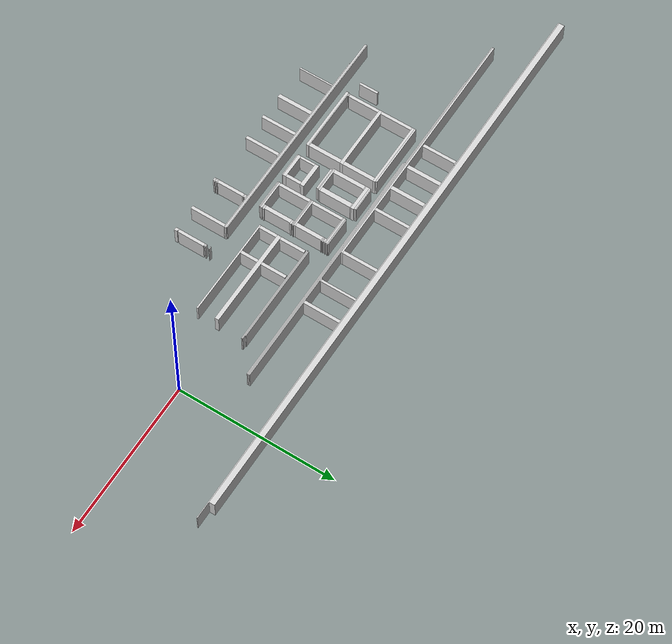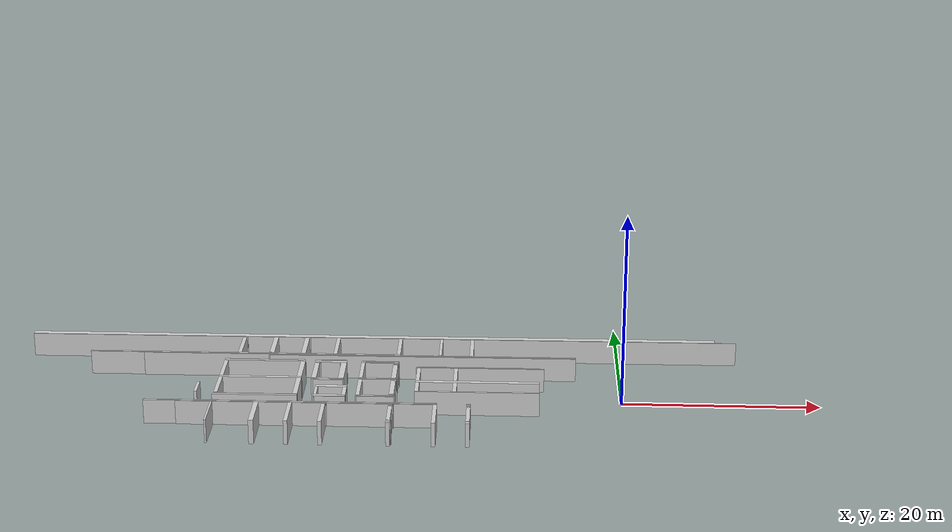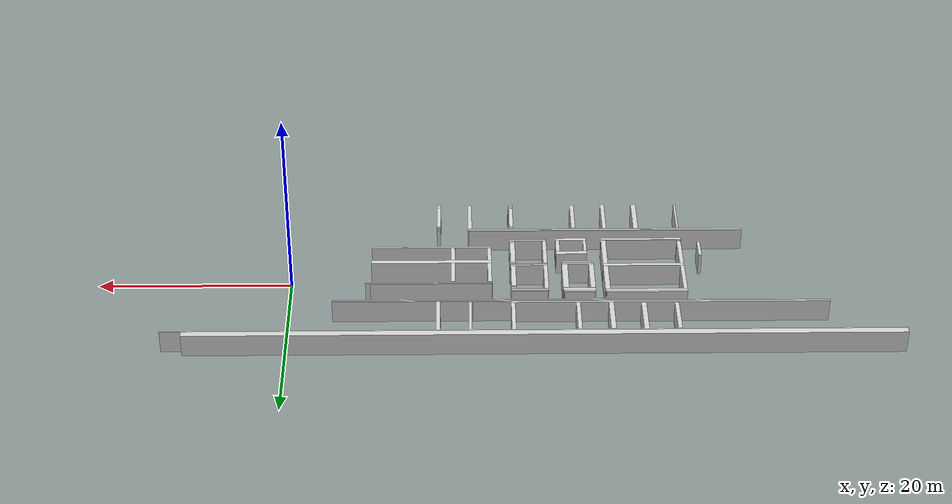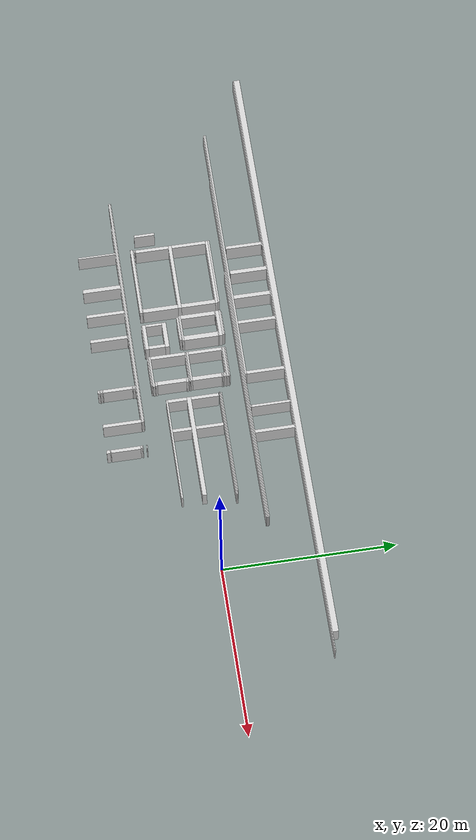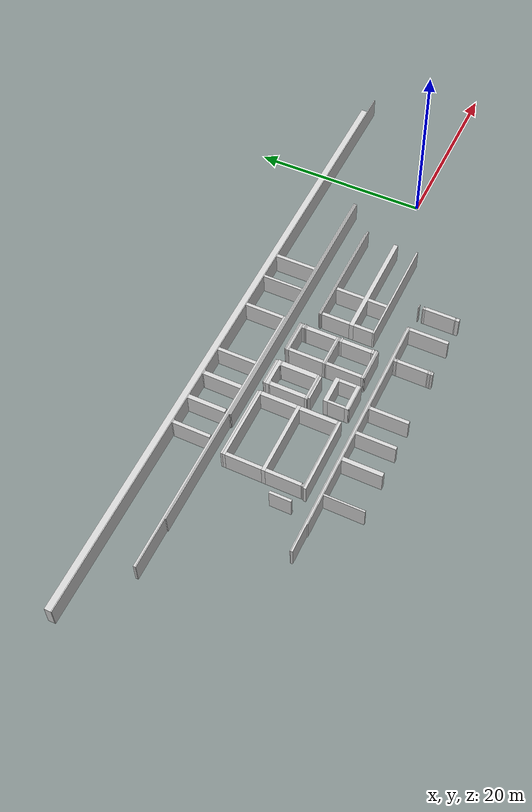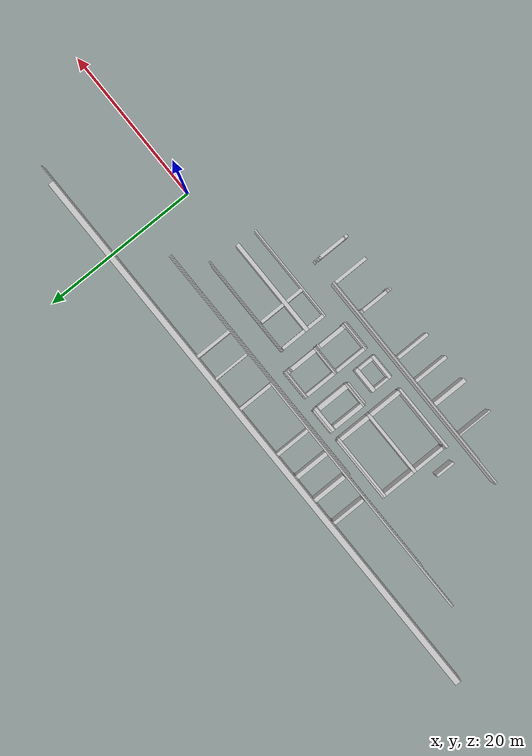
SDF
<sdf version="1.8">
 <model name="campus_first_floor">
  <static>true</static>
  <link name="wall_0">
   <pose>-26.00000 11.25000 1.25000 0 0 0</pose>
   <collision name="collision"><geometry><box><size>72.50000 0.70000 2.50000</size></box></geometry></collision>
   <visual name="visual">
    <geometry><box><size>72.50000 0.70000 2.50000</size></box></geometry>
    <material>
     <ambient>0.72 0.72 0.72 1</ambient>
     <diffuse>0.82 0.82 0.82 1</diffuse>
     <specular>0.05 0.05 0.05 1</specular>
    </material>
   </visual>
  </link>
  <link name="wall_1">
   <pose>-24.90000 10.85000 1.25000 0 0 0</pose>
   <collision name="collision"><geometry><box><size>74.70000 0.10000 2.50000</size></box></geometry></collision>
   <visual name="visual">
    <geometry><box><size>74.70000 0.10000 2.50000</size></box></geometry>
    <material>
     <ambient>0.72 0.72 0.72 1</ambient>
     <diffuse>0.82 0.82 0.82 1</diffuse>
     <specular>0.05 0.05 0.05 1</specular>
    </material>
   </visual>
  </link>
  <link name="wall_2">
   <pose>-32.85000 10.75000 1.25000 0 0 0</pose>
   <collision name="collision"><geometry><box><size>0.60000 0.10000 2.50000</size></box></geometry></collision>
   <visual name="visual">
    <geometry><box><size>0.60000 0.10000 2.50000</size></box></geometry>
    <material>
     <ambient>0.72 0.72 0.72 1</ambient>
     <diffuse>0.82 0.82 0.82 1</diffuse>
     <specular>0.05 0.05 0.05 1</specular>
    </material>
   </visual>
  </link>
  <link name="wall_4">
   <pose>-39.50000 10.75000 1.25000 0 0 0</pose>
   <collision name="collision"><geometry><box><size>0.50000 0.10000 2.50000</size></box></geometry></collision>
   <visual name="visual">
    <geometry><box><size>0.50000 0.10000 2.50000</size></box></geometry>
    <material>
     <ambient>0.72 0.72 0.72 1</ambient>
     <diffuse>0.82 0.82 0.82 1</diffuse>
     <specular>0.05 0.05 0.05 1</specular>
    </material>
   </visual>
  </link>
  <link name="wall_23">
   <pose>-39.55000 8.60000 1.25000 0 0 0</pose>
   <collision name="collision"><geometry><box><size>0.40000 4.20000 2.50000</size></box></geometry></collision>
   <visual name="visual">
    <geometry><box><size>0.40000 4.20000 2.50000</size></box></geometry>
    <material>
     <ambient>0.72 0.72 0.72 1</ambient>
     <diffuse>0.82 0.82 0.82 1</diffuse>
     <specular>0.05 0.05 0.05 1</specular>
    </material>
   </visual>
  </link>
  <link name="wall_25">
   <pose>-36.20000 8.65000 1.25000 0 0 0</pose>
   <collision name="collision"><geometry><box><size>0.50000 4.30000 2.50000</size></box></geometry></collision>
   <visual name="visual">
    <geometry><box><size>0.50000 4.30000 2.50000</size></box></geometry>
    <material>
     <ambient>0.72 0.72 0.72 1</ambient>
     <diffuse>0.82 0.82 0.82 1</diffuse>
     <specular>0.05 0.05 0.05 1</specular>
    </material>
   </visual>
  </link>
  <link name="wall_28">
   <pose>-32.90000 8.55000 1.25000 0 0 0</pose>
   <collision name="collision"><geometry><box><size>0.50000 4.30000 2.50000</size></box></geometry></collision>
   <visual name="visual">
    <geometry><box><size>0.50000 4.30000 2.50000</size></box></geometry>
    <material>
     <ambient>0.72 0.72 0.72 1</ambient>
     <diffuse>0.82 0.82 0.82 1</diffuse>
     <specular>0.05 0.05 0.05 1</specular>
    </material>
   </visual>
  </link>
  <link name="wall_29">
   <pose>-29.55000 8.60000 1.25000 0 0 0</pose>
   <collision name="collision"><geometry><box><size>0.40000 4.40000 2.50000</size></box></geometry></collision>
   <visual name="visual">
    <geometry><box><size>0.40000 4.40000 2.50000</size></box></geometry>
    <material>
     <ambient>0.72 0.72 0.72 1</ambient>
     <diffuse>0.82 0.82 0.82 1</diffuse>
     <specular>0.05 0.05 0.05 1</specular>
    </material>
   </visual>
  </link>
  <link name="wall_30">
   <pose>-22.95000 8.60000 1.25000 0 0 0</pose>
   <collision name="collision"><geometry><box><size>0.40000 4.40000 2.50000</size></box></geometry></collision>
   <visual name="visual">
    <geometry><box><size>0.40000 4.40000 2.50000</size></box></geometry>
    <material>
     <ambient>0.72 0.72 0.72 1</ambient>
     <diffuse>0.82 0.82 0.82 1</diffuse>
     <specular>0.05 0.05 0.05 1</specular>
    </material>
   </visual>
  </link>
  <link name="wall_32">
   <pose>-18.60000 8.55000 1.25000 0 0 0</pose>
   <collision name="collision"><geometry><box><size>0.30000 4.50000 2.50000</size></box></geometry></collision>
   <visual name="visual">
    <geometry><box><size>0.30000 4.50000 2.50000</size></box></geometry>
    <material>
     <ambient>0.72 0.72 0.72 1</ambient>
     <diffuse>0.82 0.82 0.82 1</diffuse>
     <specular>0.05 0.05 0.05 1</specular>
    </material>
   </visual>
  </link>
  <link name="wall_34">
   <pose>-18.65000 6.25000 1.25000 0 0 0</pose>
   <collision name="collision"><geometry><box><size>0.40000 0.10000 2.50000</size></box></geometry></collision>
   <visual name="visual">
    <geometry><box><size>0.40000 0.10000 2.50000</size></box></geometry>
    <material>
     <ambient>0.72 0.72 0.72 1</ambient>
     <diffuse>0.82 0.82 0.82 1</diffuse>
     <specular>0.05 0.05 0.05 1</specular>
    </material>
   </visual>
  </link>
  <link name="wall_35">
   <pose>-38.95000 6.30000 1.25000 0 0 0</pose>
   <collision name="collision"><geometry><box><size>32.40000 0.20000 2.50000</size></box></geometry></collision>
   <visual name="visual">
    <geometry><box><size>32.40000 0.20000 2.50000</size></box></geometry>
    <material>
     <ambient>0.72 0.72 0.72 1</ambient>
     <diffuse>0.82 0.82 0.82 1</diffuse>
     <specular>0.05 0.05 0.05 1</specular>
    </material>
   </visual>
  </link>
  <link name="wall_37">
   <pose>-15.35000 8.50000 1.25000 0 0 0</pose>
   <collision name="collision"><geometry><box><size>0.40000 4.60000 2.50000</size></box></geometry></collision>
   <visual name="visual">
    <geometry><box><size>0.40000 4.60000 2.50000</size></box></geometry>
    <material>
     <ambient>0.72 0.72 0.72 1</ambient>
     <diffuse>0.82 0.82 0.82 1</diffuse>
     <specular>0.05 0.05 0.05 1</specular>
    </material>
   </visual>
  </link>
  <link name="wall_38">
   <pose>-29.85000 6.15000 1.25000 0 0 0</pose>
   <collision name="collision"><geometry><box><size>50.60000 0.10000 2.50000</size></box></geometry></collision>
   <visual name="visual">
    <geometry><box><size>50.60000 0.10000 2.50000</size></box></geometry>
    <material>
     <ambient>0.72 0.72 0.72 1</ambient>
     <diffuse>0.82 0.82 0.82 1</diffuse>
     <specular>0.05 0.05 0.05 1</specular>
    </material>
   </visual>
  </link>
  <link name="wall_42">
   <pose>-27.05000 6.05000 1.25000 0 0 0</pose>
   <collision name="collision"><geometry><box><size>45.00000 0.10000 2.50000</size></box></geometry></collision>
   <visual name="visual">
    <geometry><box><size>45.00000 0.10000 2.50000</size></box></geometry>
    <material>
     <ambient>0.72 0.72 0.72 1</ambient>
     <diffuse>0.82 0.82 0.82 1</diffuse>
     <specular>0.05 0.05 0.05 1</specular>
    </material>
   </visual>
  </link>
  <link name="wall_45">
   <pose>-20.50000 5.95000 1.25000 0 0 0</pose>
   <collision name="collision"><geometry><box><size>31.90000 0.10000 2.50000</size></box></geometry></collision>
   <visual name="visual">
    <geometry><box><size>31.90000 0.10000 2.50000</size></box></geometry>
    <material>
     <ambient>0.72 0.72 0.72 1</ambient>
     <diffuse>0.82 0.82 0.82 1</diffuse>
     <specular>0.05 0.05 0.05 1</specular>
    </material>
   </visual>
  </link>
  <link name="wall_46">
   <pose>-20.45000 5.85000 1.25000 0 0 0</pose>
   <collision name="collision"><geometry><box><size>31.80000 0.10000 2.50000</size></box></geometry></collision>
   <visual name="visual">
    <geometry><box><size>31.80000 0.10000 2.50000</size></box></geometry>
    <material>
     <ambient>0.72 0.72 0.72 1</ambient>
     <diffuse>0.82 0.82 0.82 1</diffuse>
     <specular>0.05 0.05 0.05 1</specular>
    </material>
   </visual>
  </link>
  <link name="wall_53">
   <pose>-29.80000 4.65000 1.25000 0 0 0</pose>
   <collision name="collision"><geometry><box><size>3.10000 0.10000 2.50000</size></box></geometry></collision>
   <visual name="visual">
    <geometry><box><size>3.10000 0.10000 2.50000</size></box></geometry>
    <material>
     <ambient>0.72 0.72 0.72 1</ambient>
     <diffuse>0.82 0.82 0.82 1</diffuse>
     <specular>0.05 0.05 0.05 1</specular>
    </material>
   </visual>
  </link>
  <link name="wall_55">
   <pose>-36.70000 4.60000 1.25000 0 0 0</pose>
   <collision name="collision"><geometry><box><size>8.30000 0.20000 2.50000</size></box></geometry></collision>
   <visual name="visual">
    <geometry><box><size>8.30000 0.20000 2.50000</size></box></geometry>
    <material>
     <ambient>0.72 0.72 0.72 1</ambient>
     <diffuse>0.82 0.82 0.82 1</diffuse>
     <specular>0.05 0.05 0.05 1</specular>
    </material>
   </visual>
  </link>
  <link name="wall_57">
   <pose>-29.85000 4.50000 1.25000 0 0 0</pose>
   <collision name="collision"><geometry><box><size>3.20000 0.20000 2.50000</size></box></geometry></collision>
   <visual name="visual">
    <geometry><box><size>3.20000 0.20000 2.50000</size></box></geometry>
    <material>
     <ambient>0.72 0.72 0.72 1</ambient>
     <diffuse>0.82 0.82 0.82 1</diffuse>
     <specular>0.05 0.05 0.05 1</specular>
    </material>
   </visual>
  </link>
  <link name="wall_58">
   <pose>-24.70000 4.45000 1.25000 0 0 0</pose>
   <collision name="collision"><geometry><box><size>3.70000 0.10000 2.50000</size></box></geometry></collision>
   <visual name="visual">
    <geometry><box><size>3.70000 0.10000 2.50000</size></box></geometry>
    <material>
     <ambient>0.72 0.72 0.72 1</ambient>
     <diffuse>0.82 0.82 0.82 1</diffuse>
     <specular>0.05 0.05 0.05 1</specular>
    </material>
   </visual>
  </link>
  <link name="wall_60">
   <pose>-24.70000 4.35000 1.25000 0 0 0</pose>
   <collision name="collision"><geometry><box><size>3.90000 0.10000 2.50000</size></box></geometry></collision>
   <visual name="visual">
    <geometry><box><size>3.90000 0.10000 2.50000</size></box></geometry>
    <material>
     <ambient>0.72 0.72 0.72 1</ambient>
     <diffuse>0.82 0.82 0.82 1</diffuse>
     <specular>0.05 0.05 0.05 1</specular>
    </material>
   </visual>
  </link>
  <link name="wall_63">
   <pose>-36.65000 4.35000 1.25000 0 0 0</pose>
   <collision name="collision"><geometry><box><size>8.40000 0.30000 2.50000</size></box></geometry></collision>
   <visual name="visual">
    <geometry><box><size>8.40000 0.30000 2.50000</size></box></geometry>
    <material>
     <ambient>0.72 0.72 0.72 1</ambient>
     <diffuse>0.82 0.82 0.82 1</diffuse>
     <specular>0.05 0.05 0.05 1</specular>
    </material>
   </visual>
  </link>
  <link name="wall_64">
   <pose>-24.75000 4.20000 1.25000 0 0 0</pose>
   <collision name="collision"><geometry><box><size>3.80000 0.20000 2.50000</size></box></geometry></collision>
   <visual name="visual">
    <geometry><box><size>3.80000 0.20000 2.50000</size></box></geometry>
    <material>
     <ambient>0.72 0.72 0.72 1</ambient>
     <diffuse>0.82 0.82 0.82 1</diffuse>
     <specular>0.05 0.05 0.05 1</specular>
    </material>
   </visual>
  </link>
  <link name="wall_66">
   <pose>-29.80000 4.20000 1.25000 0 0 0</pose>
   <collision name="collision"><geometry><box><size>3.30000 0.40000 2.50000</size></box></geometry></collision>
   <visual name="visual">
    <geometry><box><size>3.30000 0.40000 2.50000</size></box></geometry>
    <material>
     <ambient>0.72 0.72 0.72 1</ambient>
     <diffuse>0.82 0.82 0.82 1</diffuse>
     <specular>0.05 0.05 0.05 1</specular>
    </material>
   </visual>
  </link>
  <link name="wall_67">
   <pose>-24.70000 4.05000 1.25000 0 0 0</pose>
   <collision name="collision"><geometry><box><size>3.90000 0.10000 2.50000</size></box></geometry></collision>
   <visual name="visual">
    <geometry><box><size>3.90000 0.10000 2.50000</size></box></geometry>
    <material>
     <ambient>0.72 0.72 0.72 1</ambient>
     <diffuse>0.82 0.82 0.82 1</diffuse>
     <specular>0.05 0.05 0.05 1</specular>
    </material>
   </visual>
  </link>
  <link name="wall_70">
   <pose>-31.15000 3.95000 1.25000 0 0 0</pose>
   <collision name="collision"><geometry><box><size>0.60000 0.10000 2.50000</size></box></geometry></collision>
   <visual name="visual">
    <geometry><box><size>0.60000 0.10000 2.50000</size></box></geometry>
    <material>
     <ambient>0.72 0.72 0.72 1</ambient>
     <diffuse>0.82 0.82 0.82 1</diffuse>
     <specular>0.05 0.05 0.05 1</specular>
    </material>
   </visual>
  </link>
  <link name="wall_71">
   <pose>-28.50000 3.95000 1.25000 0 0 0</pose>
   <collision name="collision"><geometry><box><size>0.70000 0.10000 2.50000</size></box></geometry></collision>
   <visual name="visual">
    <geometry><box><size>0.70000 0.10000 2.50000</size></box></geometry>
    <material>
     <ambient>0.72 0.72 0.72 1</ambient>
     <diffuse>0.82 0.82 0.82 1</diffuse>
     <specular>0.05 0.05 0.05 1</specular>
    </material>
   </visual>
  </link>
  <link name="wall_72">
   <pose>-23.10000 3.90000 1.25000 0 0 0</pose>
   <collision name="collision"><geometry><box><size>0.50000 0.20000 2.50000</size></box></geometry></collision>
   <visual name="visual">
    <geometry><box><size>0.50000 0.20000 2.50000</size></box></geometry>
    <material>
     <ambient>0.72 0.72 0.72 1</ambient>
     <diffuse>0.82 0.82 0.82 1</diffuse>
     <specular>0.05 0.05 0.05 1</specular>
    </material>
   </visual>
  </link>
  <link name="wall_75">
   <pose>-23.05000 3.75000 1.25000 0 0 0</pose>
   <collision name="collision"><geometry><box><size>0.60000 0.10000 2.50000</size></box></geometry></collision>
   <visual name="visual">
    <geometry><box><size>0.60000 0.10000 2.50000</size></box></geometry>
    <material>
     <ambient>0.72 0.72 0.72 1</ambient>
     <diffuse>0.82 0.82 0.82 1</diffuse>
     <specular>0.05 0.05 0.05 1</specular>
    </material>
   </visual>
  </link>
  <link name="wall_77">
   <pose>-23.10000 3.65000 1.25000 0 0 0</pose>
   <collision name="collision"><geometry><box><size>0.50000 0.10000 2.50000</size></box></geometry></collision>
   <visual name="visual">
    <geometry><box><size>0.50000 0.10000 2.50000</size></box></geometry>
    <material>
     <ambient>0.72 0.72 0.72 1</ambient>
     <diffuse>0.82 0.82 0.82 1</diffuse>
     <specular>0.05 0.05 0.05 1</specular>
    </material>
   </visual>
  </link>
  <link name="wall_78">
   <pose>-23.05000 3.55000 1.25000 0 0 0</pose>
   <collision name="collision"><geometry><box><size>0.60000 0.10000 2.50000</size></box></geometry></collision>
   <visual name="visual">
    <geometry><box><size>0.60000 0.10000 2.50000</size></box></geometry>
    <material>
     <ambient>0.72 0.72 0.72 1</ambient>
     <diffuse>0.82 0.82 0.82 1</diffuse>
     <specular>0.05 0.05 0.05 1</specular>
    </material>
   </visual>
  </link>
  <link name="wall_83">
   <pose>-14.60000 3.15000 1.25000 0 0 0</pose>
   <collision name="collision"><geometry><box><size>12.50000 0.10000 2.50000</size></box></geometry></collision>
   <visual name="visual">
    <geometry><box><size>12.50000 0.10000 2.50000</size></box></geometry>
    <material>
     <ambient>0.72 0.72 0.72 1</ambient>
     <diffuse>0.82 0.82 0.82 1</diffuse>
     <specular>0.05 0.05 0.05 1</specular>
    </material>
   </visual>
  </link>
  <link name="wall_85">
   <pose>-14.35000 3.05000 1.25000 0 0 0</pose>
   <collision name="collision"><geometry><box><size>13.00000 0.10000 2.50000</size></box></geometry></collision>
   <visual name="visual">
    <geometry><box><size>13.00000 0.10000 2.50000</size></box></geometry>
    <material>
     <ambient>0.72 0.72 0.72 1</ambient>
     <diffuse>0.82 0.82 0.82 1</diffuse>
     <specular>0.05 0.05 0.05 1</specular>
    </material>
   </visual>
  </link>
  <link name="wall_90">
   <pose>-14.40000 2.95000 1.25000 0 0 0</pose>
   <collision name="collision"><geometry><box><size>13.10000 0.10000 2.50000</size></box></geometry></collision>
   <visual name="visual">
    <geometry><box><size>13.10000 0.10000 2.50000</size></box></geometry>
    <material>
     <ambient>0.72 0.72 0.72 1</ambient>
     <diffuse>0.82 0.82 0.82 1</diffuse>
     <specular>0.05 0.05 0.05 1</specular>
    </material>
   </visual>
  </link>
  <link name="wall_142">
   <pose>-40.65000 2.20000 1.25000 0 0 0</pose>
   <collision name="collision"><geometry><box><size>0.40000 4.00000 2.50000</size></box></geometry></collision>
   <visual name="visual">
    <geometry><box><size>0.40000 4.00000 2.50000</size></box></geometry>
    <material>
     <ambient>0.72 0.72 0.72 1</ambient>
     <diffuse>0.82 0.82 0.82 1</diffuse>
     <specular>0.05 0.05 0.05 1</specular>
    </material>
   </visual>
  </link>
  <link name="wall_144">
   <pose>-32.70000 2.20000 1.25000 0 0 0</pose>
   <collision name="collision"><geometry><box><size>0.50000 4.00000 2.50000</size></box></geometry></collision>
   <visual name="visual">
    <geometry><box><size>0.50000 4.00000 2.50000</size></box></geometry>
    <material>
     <ambient>0.72 0.72 0.72 1</ambient>
     <diffuse>0.82 0.82 0.82 1</diffuse>
     <specular>0.05 0.05 0.05 1</specular>
    </material>
   </visual>
  </link>
  <link name="wall_147">
   <pose>-26.45000 2.05000 1.25000 0 0 0</pose>
   <collision name="collision"><geometry><box><size>0.40000 3.90000 2.50000</size></box></geometry></collision>
   <visual name="visual">
    <geometry><box><size>0.40000 3.90000 2.50000</size></box></geometry>
    <material>
     <ambient>0.72 0.72 0.72 1</ambient>
     <diffuse>0.82 0.82 0.82 1</diffuse>
     <specular>0.05 0.05 0.05 1</specular>
    </material>
   </visual>
  </link>
  <link name="wall_149">
   <pose>-23.10000 1.80000 1.25000 0 0 0</pose>
   <collision name="collision"><geometry><box><size>0.50000 3.40000 2.50000</size></box></geometry></collision>
   <visual name="visual">
    <geometry><box><size>0.50000 3.40000 2.50000</size></box></geometry>
    <material>
     <ambient>0.72 0.72 0.72 1</ambient>
     <diffuse>0.82 0.82 0.82 1</diffuse>
     <specular>0.05 0.05 0.05 1</specular>
    </material>
   </visual>
  </link>
  <link name="wall_153">
   <pose>-31.20000 1.90000 1.25000 0 0 0</pose>
   <collision name="collision"><geometry><box><size>0.50000 4.00000 2.50000</size></box></geometry></collision>
   <visual name="visual">
    <geometry><box><size>0.50000 4.00000 2.50000</size></box></geometry>
    <material>
     <ambient>0.72 0.72 0.72 1</ambient>
     <diffuse>0.82 0.82 0.82 1</diffuse>
     <specular>0.05 0.05 0.05 1</specular>
    </material>
   </visual>
  </link>
  <link name="wall_154">
   <pose>-28.45000 1.90000 1.25000 0 0 0</pose>
   <collision name="collision"><geometry><box><size>0.60000 4.00000 2.50000</size></box></geometry></collision>
   <visual name="visual">
    <geometry><box><size>0.60000 4.00000 2.50000</size></box></geometry>
    <material>
     <ambient>0.72 0.72 0.72 1</ambient>
     <diffuse>0.82 0.82 0.82 1</diffuse>
     <specular>0.05 0.05 0.05 1</specular>
    </material>
   </visual>
  </link>
  <link name="wall_162">
   <pose>-24.75000 0.00000 1.25000 0 0 0</pose>
   <collision name="collision"><geometry><box><size>3.80000 0.20000 2.50000</size></box></geometry></collision>
   <visual name="visual">
    <geometry><box><size>3.80000 0.20000 2.50000</size></box></geometry>
    <material>
     <ambient>0.72 0.72 0.72 1</ambient>
     <diffuse>0.82 0.82 0.82 1</diffuse>
     <specular>0.05 0.05 0.05 1</specular>
    </material>
   </visual>
  </link>
  <link name="wall_165">
   <pose>-36.65000 0.00000 1.25000 0 0 0</pose>
   <collision name="collision"><geometry><box><size>8.40000 0.40000 2.50000</size></box></geometry></collision>
   <visual name="visual">
    <geometry><box><size>8.40000 0.40000 2.50000</size></box></geometry>
    <material>
     <ambient>0.72 0.72 0.72 1</ambient>
     <diffuse>0.82 0.82 0.82 1</diffuse>
     <specular>0.05 0.05 0.05 1</specular>
    </material>
   </visual>
  </link>
  <link name="wall_168">
   <pose>-24.70000 -0.15000 1.25000 0 0 0</pose>
   <collision name="collision"><geometry><box><size>3.90000 0.10000 2.50000</size></box></geometry></collision>
   <visual name="visual">
    <geometry><box><size>3.90000 0.10000 2.50000</size></box></geometry>
    <material>
     <ambient>0.72 0.72 0.72 1</ambient>
     <diffuse>0.82 0.82 0.82 1</diffuse>
     <specular>0.05 0.05 0.05 1</specular>
    </material>
   </visual>
  </link>
  <link name="wall_171">
   <pose>-29.80000 -0.20000 1.25000 0 0 0</pose>
   <collision name="collision"><geometry><box><size>3.30000 0.20000 2.50000</size></box></geometry></collision>
   <visual name="visual">
    <geometry><box><size>3.30000 0.20000 2.50000</size></box></geometry>
    <material>
     <ambient>0.72 0.72 0.72 1</ambient>
     <diffuse>0.82 0.82 0.82 1</diffuse>
     <specular>0.05 0.05 0.05 1</specular>
    </material>
   </visual>
  </link>
  <link name="wall_176">
   <pose>-24.75000 -0.25000 1.25000 0 0 0</pose>
   <collision name="collision"><geometry><box><size>3.80000 0.10000 2.50000</size></box></geometry></collision>
   <visual name="visual">
    <geometry><box><size>3.80000 0.10000 2.50000</size></box></geometry>
    <material>
     <ambient>0.72 0.72 0.72 1</ambient>
     <diffuse>0.82 0.82 0.82 1</diffuse>
     <specular>0.05 0.05 0.05 1</specular>
    </material>
   </visual>
  </link>
  <link name="wall_178">
   <pose>-20.65000 1.20000 1.25000 0 0 0</pose>
   <collision name="collision"><geometry><box><size>0.40000 3.20000 2.50000</size></box></geometry></collision>
   <visual name="visual">
    <geometry><box><size>0.40000 3.20000 2.50000</size></box></geometry>
    <material>
     <ambient>0.72 0.72 0.72 1</ambient>
     <diffuse>0.82 0.82 0.82 1</diffuse>
     <specular>0.05 0.05 0.05 1</specular>
    </material>
   </visual>
  </link>
  <link name="wall_179">
   <pose>-29.85000 -0.35000 1.25000 0 0 0</pose>
   <collision name="collision"><geometry><box><size>3.20000 0.10000 2.50000</size></box></geometry></collision>
   <visual name="visual">
    <geometry><box><size>3.20000 0.10000 2.50000</size></box></geometry>
    <material>
     <ambient>0.72 0.72 0.72 1</ambient>
     <diffuse>0.82 0.82 0.82 1</diffuse>
     <specular>0.05 0.05 0.05 1</specular>
    </material>
   </visual>
  </link>
  <link name="wall_180">
   <pose>-16.85000 1.20000 1.25000 0 0 0</pose>
   <collision name="collision"><geometry><box><size>0.40000 3.20000 2.50000</size></box></geometry></collision>
   <visual name="visual">
    <geometry><box><size>0.40000 3.20000 2.50000</size></box></geometry>
    <material>
     <ambient>0.72 0.72 0.72 1</ambient>
     <diffuse>0.82 0.82 0.82 1</diffuse>
     <specular>0.05 0.05 0.05 1</specular>
    </material>
   </visual>
  </link>
  <link name="wall_185">
   <pose>-23.10000 -0.35000 1.25000 0 0 0</pose>
   <collision name="collision"><geometry><box><size>0.50000 0.10000 2.50000</size></box></geometry></collision>
   <visual name="visual">
    <geometry><box><size>0.50000 0.10000 2.50000</size></box></geometry>
    <material>
     <ambient>0.72 0.72 0.72 1</ambient>
     <diffuse>0.82 0.82 0.82 1</diffuse>
     <specular>0.05 0.05 0.05 1</specular>
    </material>
   </visual>
  </link>
  <link name="wall_193">
   <pose>-23.05000 -0.50000 1.25000 0 0 0</pose>
   <collision name="collision"><geometry><box><size>0.60000 0.20000 2.50000</size></box></geometry></collision>
   <visual name="visual">
    <geometry><box><size>0.60000 0.20000 2.50000</size></box></geometry>
    <material>
     <ambient>0.72 0.72 0.72 1</ambient>
     <diffuse>0.82 0.82 0.82 1</diffuse>
     <specular>0.05 0.05 0.05 1</specular>
    </material>
   </visual>
  </link>
  <link name="wall_194">
   <pose>-29.75000 -0.50000 1.25000 0 0 0</pose>
   <collision name="collision"><geometry><box><size>3.00000 0.20000 2.50000</size></box></geometry></collision>
   <visual name="visual">
    <geometry><box><size>3.00000 0.20000 2.50000</size></box></geometry>
    <material>
     <ambient>0.72 0.72 0.72 1</ambient>
     <diffuse>0.82 0.82 0.82 1</diffuse>
     <specular>0.05 0.05 0.05 1</specular>
    </material>
   </visual>
  </link>
  <link name="wall_200">
   <pose>-14.60000 -0.65000 1.25000 0 0 0</pose>
   <collision name="collision"><geometry><box><size>12.50000 0.50000 2.50000</size></box></geometry></collision>
   <visual name="visual">
    <geometry><box><size>12.50000 0.50000 2.50000</size></box></geometry>
    <material>
     <ambient>0.72 0.72 0.72 1</ambient>
     <diffuse>0.82 0.82 0.82 1</diffuse>
     <specular>0.05 0.05 0.05 1</specular>
    </material>
   </visual>
  </link>
  <link name="wall_238">
   <pose>-29.25000 -2.15000 1.25000 0 0 0</pose>
   <collision name="collision"><geometry><box><size>3.20000 0.50000 2.50000</size></box></geometry></collision>
   <visual name="visual">
    <geometry><box><size>3.20000 0.50000 2.50000</size></box></geometry>
    <material>
     <ambient>0.72 0.72 0.72 1</ambient>
     <diffuse>0.82 0.82 0.82 1</diffuse>
     <specular>0.05 0.05 0.05 1</specular>
    </material>
   </visual>
  </link>
  <link name="wall_253">
   <pose>-20.65000 -2.00000 1.25000 0 0 0</pose>
   <collision name="collision"><geometry><box><size>0.40000 2.20000 2.50000</size></box></geometry></collision>
   <visual name="visual">
    <geometry><box><size>0.40000 2.20000 2.50000</size></box></geometry>
    <material>
     <ambient>0.72 0.72 0.72 1</ambient>
     <diffuse>0.82 0.82 0.82 1</diffuse>
     <specular>0.05 0.05 0.05 1</specular>
    </material>
   </visual>
  </link>
  <link name="wall_255">
   <pose>-16.85000 -2.00000 1.25000 0 0 0</pose>
   <collision name="collision"><geometry><box><size>0.40000 2.20000 2.50000</size></box></geometry></collision>
   <visual name="visual">
    <geometry><box><size>0.40000 2.20000 2.50000</size></box></geometry>
    <material>
     <ambient>0.72 0.72 0.72 1</ambient>
     <diffuse>0.82 0.82 0.82 1</diffuse>
     <specular>0.05 0.05 0.05 1</specular>
    </material>
   </visual>
  </link>
  <link name="wall_260">
   <pose>-14.60000 -3.20000 1.25000 0 0 0</pose>
   <collision name="collision"><geometry><box><size>12.50000 0.20000 2.50000</size></box></geometry></collision>
   <visual name="visual">
    <geometry><box><size>12.50000 0.20000 2.50000</size></box></geometry>
    <material>
     <ambient>0.72 0.72 0.72 1</ambient>
     <diffuse>0.82 0.82 0.82 1</diffuse>
     <specular>0.05 0.05 0.05 1</specular>
    </material>
   </visual>
  </link>
  <link name="wall_272">
   <pose>-23.10000 -2.30000 1.25000 0 0 0</pose>
   <collision name="collision"><geometry><box><size>0.50000 3.40000 2.50000</size></box></geometry></collision>
   <visual name="visual">
    <geometry><box><size>0.50000 3.40000 2.50000</size></box></geometry>
    <material>
     <ambient>0.72 0.72 0.72 1</ambient>
     <diffuse>0.82 0.82 0.82 1</diffuse>
     <specular>0.05 0.05 0.05 1</specular>
    </material>
   </visual>
  </link>
  <link name="wall_273">
   <pose>-42.70000 -2.80000 1.25000 0 0 0</pose>
   <collision name="collision"><geometry><box><size>0.30000 2.40000 2.50000</size></box></geometry></collision>
   <visual name="visual">
    <geometry><box><size>0.30000 2.40000 2.50000</size></box></geometry>
    <material>
     <ambient>0.72 0.72 0.72 1</ambient>
     <diffuse>0.82 0.82 0.82 1</diffuse>
     <specular>0.05 0.05 0.05 1</specular>
    </material>
   </visual>
  </link>
  <link name="wall_275">
   <pose>-40.65000 -2.15000 1.25000 0 0 0</pose>
   <collision name="collision"><geometry><box><size>0.40000 3.90000 2.50000</size></box></geometry></collision>
   <visual name="visual">
    <geometry><box><size>0.40000 3.90000 2.50000</size></box></geometry>
    <material>
     <ambient>0.72 0.72 0.72 1</ambient>
     <diffuse>0.82 0.82 0.82 1</diffuse>
     <specular>0.05 0.05 0.05 1</specular>
    </material>
   </visual>
  </link>
  <link name="wall_281">
   <pose>-40.70000 -4.15000 1.25000 0 0 0</pose>
   <collision name="collision"><geometry><box><size>0.30000 0.10000 2.50000</size></box></geometry></collision>
   <visual name="visual">
    <geometry><box><size>0.30000 0.10000 2.50000</size></box></geometry>
    <material>
     <ambient>0.72 0.72 0.72 1</ambient>
     <diffuse>0.82 0.82 0.82 1</diffuse>
     <specular>0.05 0.05 0.05 1</specular>
    </material>
   </visual>
  </link>
  <link name="wall_282">
   <pose>-23.05000 -4.10000 1.25000 0 0 0</pose>
   <collision name="collision"><geometry><box><size>0.60000 0.20000 2.50000</size></box></geometry></collision>
   <visual name="visual">
    <geometry><box><size>0.60000 0.20000 2.50000</size></box></geometry>
    <material>
     <ambient>0.72 0.72 0.72 1</ambient>
     <diffuse>0.82 0.82 0.82 1</diffuse>
     <specular>0.05 0.05 0.05 1</specular>
    </material>
   </visual>
  </link>
  <link name="wall_288">
   <pose>-40.65000 -4.25000 1.25000 0 0 0</pose>
   <collision name="collision"><geometry><box><size>0.40000 0.10000 2.50000</size></box></geometry></collision>
   <visual name="visual">
    <geometry><box><size>0.40000 0.10000 2.50000</size></box></geometry>
    <material>
     <ambient>0.72 0.72 0.72 1</ambient>
     <diffuse>0.82 0.82 0.82 1</diffuse>
     <specular>0.05 0.05 0.05 1</specular>
    </material>
   </visual>
  </link>
  <link name="wall_289">
   <pose>-26.45000 -2.30000 1.25000 0 0 0</pose>
   <collision name="collision"><geometry><box><size>0.40000 4.00000 2.50000</size></box></geometry></collision>
   <visual name="visual">
    <geometry><box><size>0.40000 4.00000 2.50000</size></box></geometry>
    <material>
     <ambient>0.72 0.72 0.72 1</ambient>
     <diffuse>0.82 0.82 0.82 1</diffuse>
     <specular>0.05 0.05 0.05 1</specular>
    </material>
   </visual>
  </link>
  <link name="wall_290">
   <pose>-32.70000 -2.25000 1.25000 0 0 0</pose>
   <collision name="collision"><geometry><box><size>0.50000 4.10000 2.50000</size></box></geometry></collision>
   <visual name="visual">
    <geometry><box><size>0.50000 4.10000 2.50000</size></box></geometry>
    <material>
     <ambient>0.72 0.72 0.72 1</ambient>
     <diffuse>0.82 0.82 0.82 1</diffuse>
     <specular>0.05 0.05 0.05 1</specular>
    </material>
   </visual>
  </link>
  <link name="wall_291">
   <pose>-30.70000 -3.35000 1.25000 0 0 0</pose>
   <collision name="collision"><geometry><box><size>0.30000 1.90000 2.50000</size></box></geometry></collision>
   <visual name="visual">
    <geometry><box><size>0.30000 1.90000 2.50000</size></box></geometry>
    <material>
     <ambient>0.72 0.72 0.72 1</ambient>
     <diffuse>0.82 0.82 0.82 1</diffuse>
     <specular>0.05 0.05 0.05 1</specular>
    </material>
   </visual>
  </link>
  <link name="wall_292">
   <pose>-27.85000 -3.35000 1.25000 0 0 0</pose>
   <collision name="collision"><geometry><box><size>0.40000 1.90000 2.50000</size></box></geometry></collision>
   <visual name="visual">
    <geometry><box><size>0.40000 1.90000 2.50000</size></box></geometry>
    <material>
     <ambient>0.72 0.72 0.72 1</ambient>
     <diffuse>0.82 0.82 0.82 1</diffuse>
     <specular>0.05 0.05 0.05 1</specular>
    </material>
   </visual>
  </link>
  <link name="wall_293">
   <pose>-23.10000 -4.25000 1.25000 0 0 0</pose>
   <collision name="collision"><geometry><box><size>0.50000 0.10000 2.50000</size></box></geometry></collision>
   <visual name="visual">
    <geometry><box><size>0.50000 0.10000 2.50000</size></box></geometry>
    <material>
     <ambient>0.72 0.72 0.72 1</ambient>
     <diffuse>0.82 0.82 0.82 1</diffuse>
     <specular>0.05 0.05 0.05 1</specular>
    </material>
   </visual>
  </link>
  <link name="wall_298">
   <pose>-36.65000 -4.35000 1.25000 0 0 0</pose>
   <collision name="collision"><geometry><box><size>8.40000 0.10000 2.50000</size></box></geometry></collision>
   <visual name="visual">
    <geometry><box><size>8.40000 0.10000 2.50000</size></box></geometry>
    <material>
     <ambient>0.72 0.72 0.72 1</ambient>
     <diffuse>0.82 0.82 0.82 1</diffuse>
     <specular>0.05 0.05 0.05 1</specular>
    </material>
   </visual>
  </link>
  <link name="wall_300">
   <pose>-24.70000 -4.40000 1.25000 0 0 0</pose>
   <collision name="collision"><geometry><box><size>3.90000 0.20000 2.50000</size></box></geometry></collision>
   <visual name="visual">
    <geometry><box><size>3.90000 0.20000 2.50000</size></box></geometry>
    <material>
     <ambient>0.72 0.72 0.72 1</ambient>
     <diffuse>0.82 0.82 0.82 1</diffuse>
     <specular>0.05 0.05 0.05 1</specular>
    </material>
   </visual>
  </link>
  <link name="wall_305">
   <pose>-24.75000 -4.55000 1.25000 0 0 0</pose>
   <collision name="collision"><geometry><box><size>3.80000 0.10000 2.50000</size></box></geometry></collision>
   <visual name="visual">
    <geometry><box><size>3.80000 0.10000 2.50000</size></box></geometry>
    <material>
     <ambient>0.72 0.72 0.72 1</ambient>
     <diffuse>0.82 0.82 0.82 1</diffuse>
     <specular>0.05 0.05 0.05 1</specular>
    </material>
   </visual>
  </link>
  <link name="wall_308">
   <pose>-24.70000 -4.65000 1.25000 0 0 0</pose>
   <collision name="collision"><geometry><box><size>3.70000 0.10000 2.50000</size></box></geometry></collision>
   <visual name="visual">
    <geometry><box><size>3.70000 0.10000 2.50000</size></box></geometry>
    <material>
     <ambient>0.72 0.72 0.72 1</ambient>
     <diffuse>0.82 0.82 0.82 1</diffuse>
     <specular>0.05 0.05 0.05 1</specular>
    </material>
   </visual>
  </link>
  <link name="wall_310">
   <pose>-29.25000 -4.50000 1.25000 0 0 0</pose>
   <collision name="collision"><geometry><box><size>3.20000 0.40000 2.50000</size></box></geometry></collision>
   <visual name="visual">
    <geometry><box><size>3.20000 0.40000 2.50000</size></box></geometry>
    <material>
     <ambient>0.72 0.72 0.72 1</ambient>
     <diffuse>0.82 0.82 0.82 1</diffuse>
     <specular>0.05 0.05 0.05 1</specular>
    </material>
   </visual>
  </link>
  <link name="wall_311">
   <pose>-36.70000 -4.55000 1.25000 0 0 0</pose>
   <collision name="collision"><geometry><box><size>8.50000 0.30000 2.50000</size></box></geometry></collision>
   <visual name="visual">
    <geometry><box><size>8.50000 0.30000 2.50000</size></box></geometry>
    <material>
     <ambient>0.72 0.72 0.72 1</ambient>
     <diffuse>0.82 0.82 0.82 1</diffuse>
     <specular>0.05 0.05 0.05 1</specular>
    </material>
   </visual>
  </link>
  <link name="wall_312">
   <pose>-29.20000 -4.75000 1.25000 0 0 0</pose>
   <collision name="collision"><geometry><box><size>3.10000 0.10000 2.50000</size></box></geometry></collision>
   <visual name="visual">
    <geometry><box><size>3.10000 0.10000 2.50000</size></box></geometry>
    <material>
     <ambient>0.72 0.72 0.72 1</ambient>
     <diffuse>0.82 0.82 0.82 1</diffuse>
     <specular>0.05 0.05 0.05 1</specular>
    </material>
   </visual>
  </link>
  <link name="wall_314">
   <pose>-33.05000 -6.15000 1.25000 0 0 0</pose>
   <collision name="collision"><geometry><box><size>29.00000 0.10000 2.50000</size></box></geometry></collision>
   <visual name="visual">
    <geometry><box><size>29.00000 0.10000 2.50000</size></box></geometry>
    <material>
     <ambient>0.72 0.72 0.72 1</ambient>
     <diffuse>0.82 0.82 0.82 1</diffuse>
     <specular>0.05 0.05 0.05 1</specular>
    </material>
   </visual>
  </link>
  <link name="wall_324">
   <pose>-15.35000 -6.25000 1.25000 0 0 0</pose>
   <collision name="collision"><geometry><box><size>0.40000 0.10000 2.50000</size></box></geometry></collision>
   <visual name="visual">
    <geometry><box><size>0.40000 0.10000 2.50000</size></box></geometry>
    <material>
     <ambient>0.72 0.72 0.72 1</ambient>
     <diffuse>0.82 0.82 0.82 1</diffuse>
     <specular>0.05 0.05 0.05 1</specular>
    </material>
   </visual>
  </link>
  <link name="wall_325">
   <pose>-33.00000 -6.30000 1.25000 0 0 0</pose>
   <collision name="collision"><geometry><box><size>29.10000 0.20000 2.50000</size></box></geometry></collision>
   <visual name="visual">
    <geometry><box><size>29.10000 0.20000 2.50000</size></box></geometry>
    <material>
     <ambient>0.72 0.72 0.72 1</ambient>
     <diffuse>0.82 0.82 0.82 1</diffuse>
     <specular>0.05 0.05 0.05 1</specular>
    </material>
   </visual>
  </link>
  <link name="wall_326">
   <pose>-31.40000 -6.45000 1.25000 0 0 0</pose>
   <collision name="collision"><geometry><box><size>25.90000 0.10000 2.50000</size></box></geometry></collision>
   <visual name="visual">
    <geometry><box><size>25.90000 0.10000 2.50000</size></box></geometry>
    <material>
     <ambient>0.72 0.72 0.72 1</ambient>
     <diffuse>0.82 0.82 0.82 1</diffuse>
     <specular>0.05 0.05 0.05 1</specular>
    </material>
   </visual>
  </link>
  <link name="wall_327">
   <pose>-23.00000 -6.55000 1.25000 0 0 0</pose>
   <collision name="collision"><geometry><box><size>0.50000 0.10000 2.50000</size></box></geometry></collision>
   <visual name="visual">
    <geometry><box><size>0.50000 0.10000 2.50000</size></box></geometry>
    <material>
     <ambient>0.72 0.72 0.72 1</ambient>
     <diffuse>0.82 0.82 0.82 1</diffuse>
     <specular>0.05 0.05 0.05 1</specular>
    </material>
   </visual>
  </link>
  <link name="wall_328">
   <pose>-29.60000 -6.55000 1.25000 0 0 0</pose>
   <collision name="collision"><geometry><box><size>0.50000 0.10000 2.50000</size></box></geometry></collision>
   <visual name="visual">
    <geometry><box><size>0.50000 0.10000 2.50000</size></box></geometry>
    <material>
     <ambient>0.72 0.72 0.72 1</ambient>
     <diffuse>0.82 0.82 0.82 1</diffuse>
     <specular>0.05 0.05 0.05 1</specular>
    </material>
   </visual>
  </link>
  <link name="wall_335">
   <pose>-23.05000 -6.70000 1.25000 0 0 0</pose>
   <collision name="collision"><geometry><box><size>0.40000 0.20000 2.50000</size></box></geometry></collision>
   <visual name="visual">
    <geometry><box><size>0.40000 0.20000 2.50000</size></box></geometry>
    <material>
     <ambient>0.72 0.72 0.72 1</ambient>
     <diffuse>0.82 0.82 0.82 1</diffuse>
     <specular>0.05 0.05 0.05 1</specular>
    </material>
   </visual>
  </link>
  <link name="wall_339">
   <pose>-15.35000 -6.75000 1.25000 0 0 0</pose>
   <collision name="collision"><geometry><box><size>0.40000 0.10000 2.50000</size></box></geometry></collision>
   <visual name="visual">
    <geometry><box><size>0.40000 0.10000 2.50000</size></box></geometry>
    <material>
     <ambient>0.72 0.72 0.72 1</ambient>
     <diffuse>0.82 0.82 0.82 1</diffuse>
     <specular>0.05 0.05 0.05 1</specular>
    </material>
   </visual>
  </link>
  <link name="wall_340">
   <pose>-23.00000 -6.85000 1.25000 0 0 0</pose>
   <collision name="collision"><geometry><box><size>0.50000 0.10000 2.50000</size></box></geometry></collision>
   <visual name="visual">
    <geometry><box><size>0.50000 0.10000 2.50000</size></box></geometry>
    <material>
     <ambient>0.72 0.72 0.72 1</ambient>
     <diffuse>0.82 0.82 0.82 1</diffuse>
     <specular>0.05 0.05 0.05 1</specular>
    </material>
   </visual>
  </link>
  <link name="wall_343">
   <pose>-15.40000 -6.90000 1.25000 0 0 0</pose>
   <collision name="collision"><geometry><box><size>0.30000 0.20000 2.50000</size></box></geometry></collision>
   <visual name="visual">
    <geometry><box><size>0.30000 0.20000 2.50000</size></box></geometry>
    <material>
     <ambient>0.72 0.72 0.72 1</ambient>
     <diffuse>0.82 0.82 0.82 1</diffuse>
     <specular>0.05 0.05 0.05 1</specular>
    </material>
   </visual>
  </link>
  <link name="wall_363">
   <pose>-23.05000 -8.60000 1.25000 0 0 0</pose>
   <collision name="collision"><geometry><box><size>0.40000 3.40000 2.50000</size></box></geometry></collision>
   <visual name="visual">
    <geometry><box><size>0.40000 3.40000 2.50000</size></box></geometry>
    <material>
     <ambient>0.72 0.72 0.72 1</ambient>
     <diffuse>0.82 0.82 0.82 1</diffuse>
     <specular>0.05 0.05 0.05 1</specular>
    </material>
   </visual>
  </link>
  <link name="wall_364">
   <pose>-23.00000 -10.35000 1.25000 0 0 0</pose>
   <collision name="collision"><geometry><box><size>0.50000 0.10000 2.50000</size></box></geometry></collision>
   <visual name="visual">
    <geometry><box><size>0.50000 0.10000 2.50000</size></box></geometry>
    <material>
     <ambient>0.72 0.72 0.72 1</ambient>
     <diffuse>0.82 0.82 0.82 1</diffuse>
     <specular>0.05 0.05 0.05 1</specular>
    </material>
   </visual>
  </link>
  <link name="wall_367">
   <pose>-15.35000 -8.70000 1.25000 0 0 0</pose>
   <collision name="collision"><geometry><box><size>0.40000 3.40000 2.50000</size></box></geometry></collision>
   <visual name="visual">
    <geometry><box><size>0.40000 3.40000 2.50000</size></box></geometry>
    <material>
     <ambient>0.72 0.72 0.72 1</ambient>
     <diffuse>0.82 0.82 0.82 1</diffuse>
     <specular>0.05 0.05 0.05 1</specular>
    </material>
   </visual>
  </link>
  <link name="wall_370">
   <pose>-15.40000 -10.45000 1.25000 0 0 0</pose>
   <collision name="collision"><geometry><box><size>0.30000 0.10000 2.50000</size></box></geometry></collision>
   <visual name="visual">
    <geometry><box><size>0.30000 0.10000 2.50000</size></box></geometry>
    <material>
     <ambient>0.72 0.72 0.72 1</ambient>
     <diffuse>0.82 0.82 0.82 1</diffuse>
     <specular>0.05 0.05 0.05 1</specular>
    </material>
   </visual>
  </link>
  <link name="wall_371">
   <pose>-23.05000 -10.50000 1.25000 0 0 0</pose>
   <collision name="collision"><geometry><box><size>0.40000 0.20000 2.50000</size></box></geometry></collision>
   <visual name="visual">
    <geometry><box><size>0.40000 0.20000 2.50000</size></box></geometry>
    <material>
     <ambient>0.72 0.72 0.72 1</ambient>
     <diffuse>0.82 0.82 0.82 1</diffuse>
     <specular>0.05 0.05 0.05 1</specular>
    </material>
   </visual>
  </link>
  <link name="wall_372">
   <pose>-23.00000 -10.65000 1.25000 0 0 0</pose>
   <collision name="collision"><geometry><box><size>0.50000 0.10000 2.50000</size></box></geometry></collision>
   <visual name="visual">
    <geometry><box><size>0.50000 0.10000 2.50000</size></box></geometry>
    <material>
     <ambient>0.72 0.72 0.72 1</ambient>
     <diffuse>0.82 0.82 0.82 1</diffuse>
     <specular>0.05 0.05 0.05 1</specular>
    </material>
   </visual>
  </link>
  <link name="wall_376">
   <pose>-18.65000 -8.70000 1.25000 0 0 0</pose>
   <collision name="collision"><geometry><box><size>0.40000 4.40000 2.50000</size></box></geometry></collision>
   <visual name="visual">
    <geometry><box><size>0.40000 4.40000 2.50000</size></box></geometry>
    <material>
     <ambient>0.72 0.72 0.72 1</ambient>
     <diffuse>0.82 0.82 0.82 1</diffuse>
     <specular>0.05 0.05 0.05 1</specular>
    </material>
   </visual>
  </link>
  <link name="wall_377">
   <pose>-32.95000 -8.70000 1.25000 0 0 0</pose>
   <collision name="collision"><geometry><box><size>0.40000 4.40000 2.50000</size></box></geometry></collision>
   <visual name="visual">
    <geometry><box><size>0.40000 4.40000 2.50000</size></box></geometry>
    <material>
     <ambient>0.72 0.72 0.72 1</ambient>
     <diffuse>0.82 0.82 0.82 1</diffuse>
     <specular>0.05 0.05 0.05 1</specular>
    </material>
   </visual>
  </link>
  <link name="wall_381">
   <pose>-23.05000 -10.80000 1.25000 0 0 0</pose>
   <collision name="collision"><geometry><box><size>0.40000 0.20000 2.50000</size></box></geometry></collision>
   <visual name="visual">
    <geometry><box><size>0.40000 0.20000 2.50000</size></box></geometry>
    <material>
     <ambient>0.72 0.72 0.72 1</ambient>
     <diffuse>0.82 0.82 0.82 1</diffuse>
     <specular>0.05 0.05 0.05 1</specular>
    </material>
   </visual>
  </link>
  <link name="wall_383">
   <pose>-15.35000 -10.70000 1.25000 0 0 0</pose>
   <collision name="collision"><geometry><box><size>0.40000 0.40000 2.50000</size></box></geometry></collision>
   <visual name="visual">
    <geometry><box><size>0.40000 0.40000 2.50000</size></box></geometry>
    <material>
     <ambient>0.72 0.72 0.72 1</ambient>
     <diffuse>0.82 0.82 0.82 1</diffuse>
     <specular>0.05 0.05 0.05 1</specular>
    </material>
   </visual>
  </link>
  <link name="wall_384">
   <pose>-29.65000 -8.75000 1.25000 0 0 0</pose>
   <collision name="collision"><geometry><box><size>0.40000 4.30000 2.50000</size></box></geometry></collision>
   <visual name="visual">
    <geometry><box><size>0.40000 4.30000 2.50000</size></box></geometry>
    <material>
     <ambient>0.72 0.72 0.72 1</ambient>
     <diffuse>0.82 0.82 0.82 1</diffuse>
     <specular>0.05 0.05 0.05 1</specular>
    </material>
   </visual>
  </link>
  <link name="wall_386">
   <pose>-36.30000 -8.70000 1.25000 0 0 0</pose>
   <collision name="collision"><geometry><box><size>0.50000 4.40000 2.50000</size></box></geometry></collision>
   <visual name="visual">
    <geometry><box><size>0.50000 4.40000 2.50000</size></box></geometry>
    <material>
     <ambient>0.72 0.72 0.72 1</ambient>
     <diffuse>0.82 0.82 0.82 1</diffuse>
     <specular>0.05 0.05 0.05 1</specular>
    </material>
   </visual>
  </link>
  <link name="wall_390">
   <pose>-40.75000 -8.70000 1.25000 0 0 0</pose>
   <collision name="collision"><geometry><box><size>0.20000 4.40000 2.50000</size></box></geometry></collision>
   <visual name="visual">
    <geometry><box><size>0.20000 4.40000 2.50000</size></box></geometry>
    <material>
     <ambient>0.72 0.72 0.72 1</ambient>
     <diffuse>0.82 0.82 0.82 1</diffuse>
     <specular>0.05 0.05 0.05 1</specular>
    </material>
   </visual>
  </link>
 </model>
</sdf>
